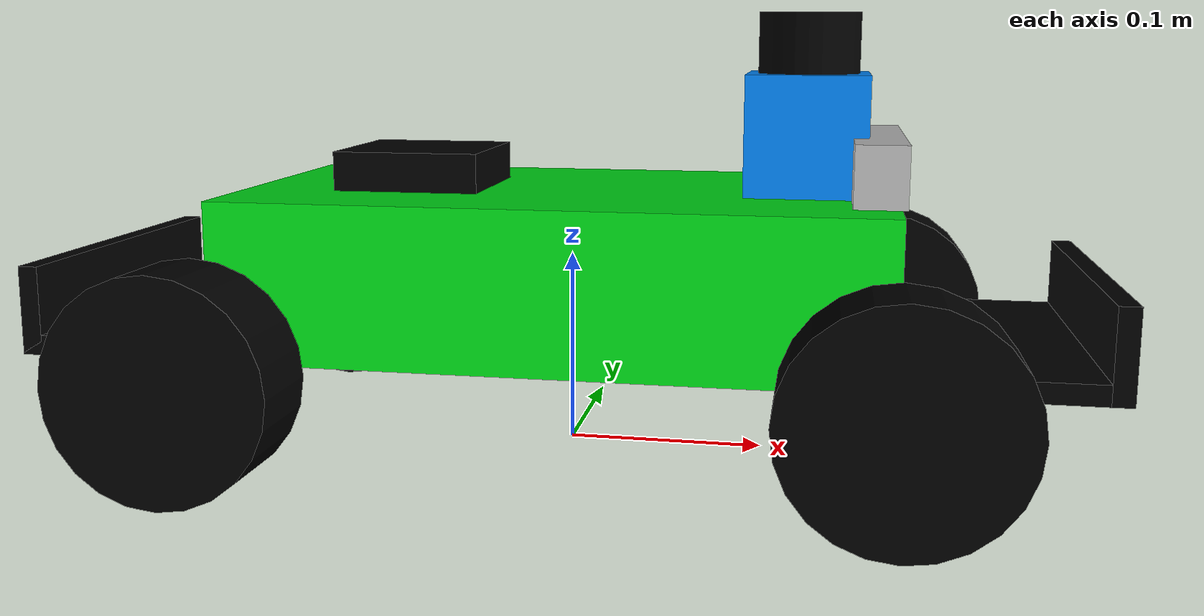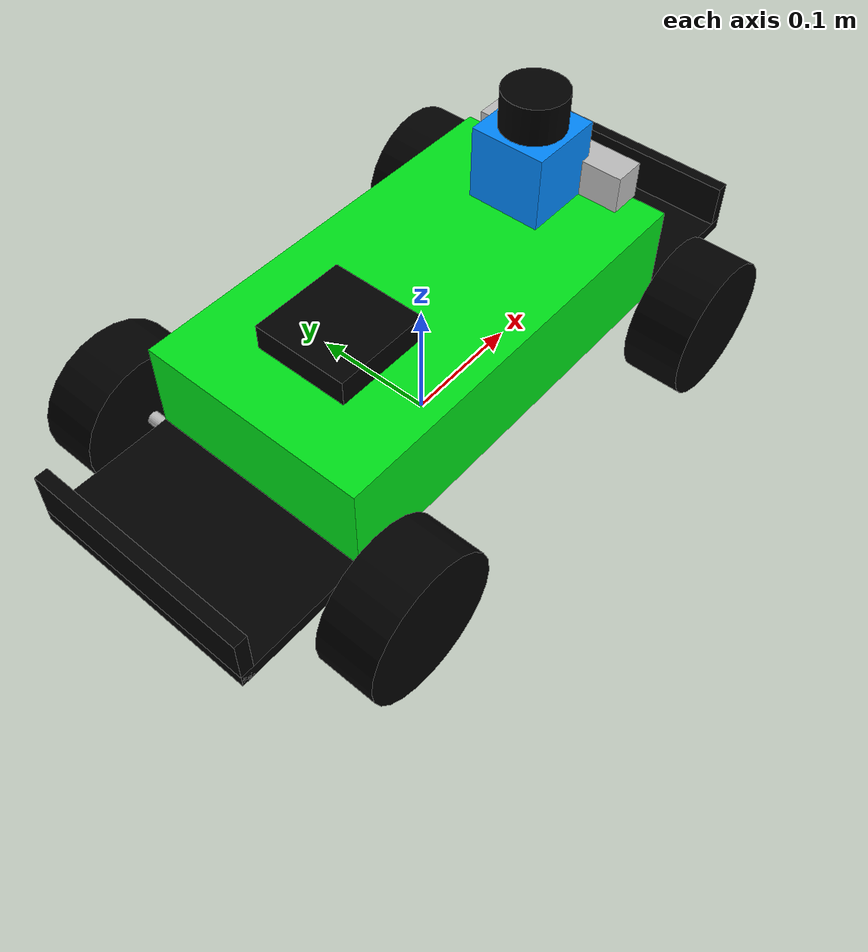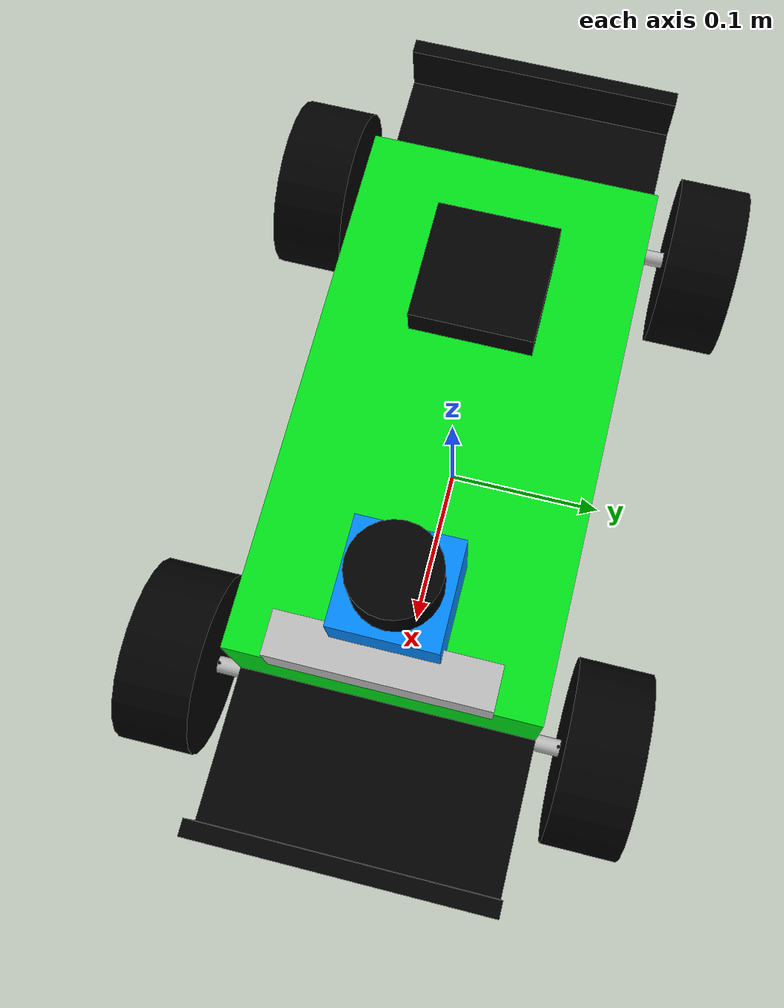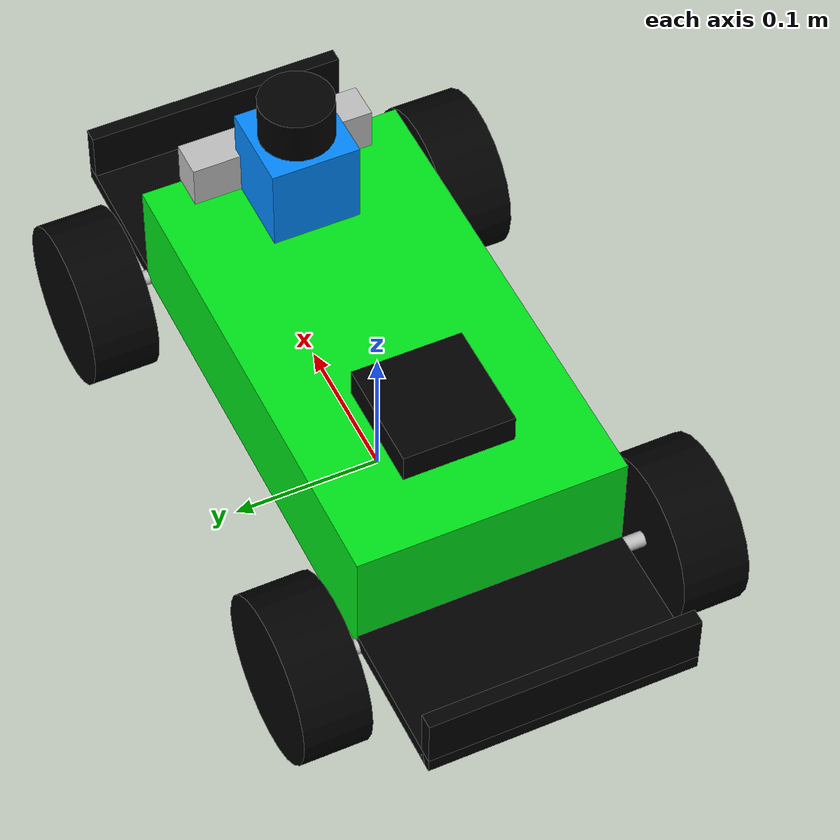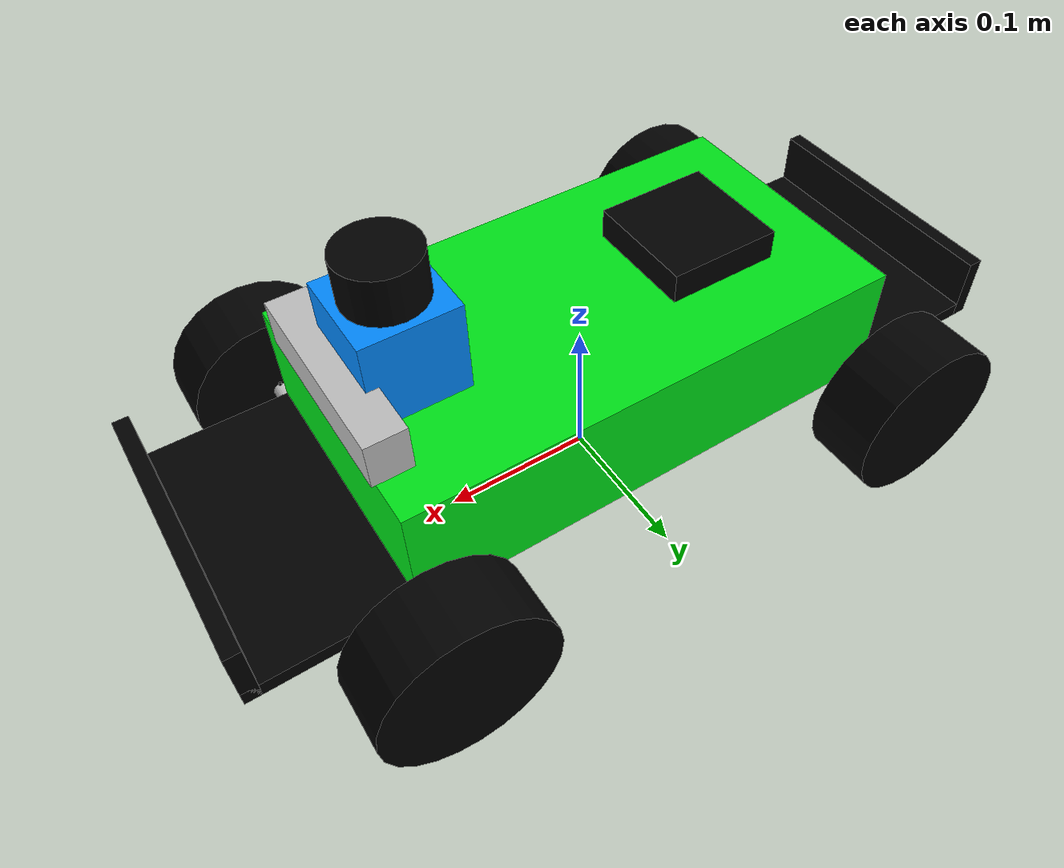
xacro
<?xml version="1.0"?>
<robot xmlns:xacro="http://www.ros.org/wiki/xacro" name="robot">

    <!-- ros2_control not implemented yet -->
    <xacro:arg name="use_ros2_control" default="false" />
    <xacro:arg name="sim_mode" default="false" />

    <!-- Robot model without sensors -->
    <xacro:include filename="robot_core.xacro" />

    <!-- Sensors -->
    <xacro:include filename="lidar.xacro" />
    <xacro:include filename="imu.xacro" />
    <xacro:include filename="camera.xacro" />
    <xacro:include filename="depth_camera.xacro" />

    <!-- Controller -->

    <xacro:if value="$(arg use_ros2_control)">
        <xacro:include filename="ros2_control.xacro" />
    </xacro:if>
    <xacro:if value="$(arg sim_mode)">
        <xacro:unless value="$(arg use_ros2_control)">
            <xacro:include filename="gazebo_ackermann_control.xacro" />
        </xacro:unless>
    </xacro:if>
</robot>

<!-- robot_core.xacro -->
<robot xmlns:xacro="http://www.ros.org/wiki/xacro" >
  <xacro:arg name="wheel_diameter" default="0.11"/>

  <xacro:include filename="inertial_macros.xacro"/>

  <!-- Define robot constants -->
  <xacro:property name="wheel_mass" value="0.2"/>
  <xacro:property name="chassis_mass" value = "1.5"/>
  <xacro:property name="axle_mass" value="0.2"/>
  <xacro:property name="bumper_mass" value = "0.2"/>
  <xacro:property name="wheel_radius" value="${$(arg wheel_diameter)/2}"/>
  <xacro:property name="wheel_width" value="0.045"/>
  <xacro:property name="steering_kingpin_mass" value = "0.001"/>
  <xacro:property name="steering_kingpin_length" value = "0.014"/>
  <xacro:property name="steering_kingpin_radius" value = "0.001"/>
  <xacro:property name="wheelbase_length" value="0.33"/>
  <xacro:property name="chassis_breadth" value = "0.18"/>
  <xacro:property name="chassis_length" value = "${wheelbase_length}"/>
  <xacro:property name="bumper_horiz_length" value = "0.1"/>
  <xacro:property name="bumper_vert_length" value = "0.045"/>
  <xacro:property name="bumper_thickness" value = "0.01"/>
  <xacro:property name="overall_body_length" value = "${wheelbase_length+2*bumper_horiz_length}"/>
  <xacro:property name="chassis_height" value = "0.08"/>
  <xacro:property name="front_wheelbase_breadth" value="0.21"/>
  <xacro:property name="rear_wheelbase_breadth" value="0.21"/>
  <xacro:property name="axle_radius" value="0.005"/>

  <material name="black">
    <color rgba="0 0 0 1"/>
  </material>
  <material name="lime">
    <color rgba="0 0.9 0.1 1"/>
  </material>
  <material name="silver">
    <color rgba="0.75 0.75 0.75 1"/>
  </material>
  <material name="neon_blue">
    <color rgba="0.01 0.54 1 1"/>
  </material>

  <!-- Robot Base -->
  <link name="base_link"/>

  <link name="chassis_link">
    <visual>
      <origin xyz="0 0 0" rpy="0 0 0"/>
      <geometry>
        <box size="${chassis_length} ${chassis_breadth} ${chassis_height}"/>
      </geometry>
      <material name="lime"/>
    </visual>
    <collision>
      <geometry>
        <box size="${chassis_length} ${chassis_breadth} ${chassis_height}"/>
      </geometry>
    </collision>
    <xacro:inertial_box mass="${chassis_mass}" length="${chassis_length}" breadth="${chassis_breadth}" height="${chassis_height}">
      <origin xyz="0 0 0" rpy="0 0 0"/>
    </xacro:inertial_box>
  </link>

  <joint name="chassis_joint" type="fixed">
    <parent link="base_link"/>
    <child link="chassis_link"/>
    <origin rpy="0 0 0" xyz="0 0 ${wheel_radius+chassis_height/2}"/>
  </joint>

  <link name="bumper_link">
    <visual>
      <origin xyz="${chassis_length/2 + bumper_horiz_length/2} 0 ${-chassis_height/2+bumper_thickness/2}" rpy="0 0 0"/>
      <geometry>
        <box size="${bumper_horiz_length} ${chassis_breadth} ${bumper_thickness}"/>
      </geometry>
      <material name="black"/>
    </visual>
    <visual>
      <origin xyz="${-chassis_length/2 - bumper_horiz_length/2} 0 ${-chassis_height/2+bumper_thickness/2}" rpy="0 0 0"/>
      <geometry>
        <box size="${bumper_horiz_length} ${chassis_breadth} ${bumper_thickness}"/>
      </geometry>
      <material name="black"/>
    </visual>
    <visual>
      <origin xyz="${chassis_length/2 + bumper_horiz_length - bumper_thickness/2} 0 ${-chassis_height/2+bumper_vert_length/2}" rpy="0 0 0"/>
      <geometry>
        <box size="${bumper_thickness} ${chassis_breadth} ${bumper_vert_length}"/>
      </geometry>
      <material name="black"/>
    </visual>
    <visual>
      <origin xyz="${-chassis_length/2 - bumper_horiz_length + bumper_thickness/2} 0 ${-chassis_height/2+bumper_vert_length/2}" rpy="0 0 0"/>
      <geometry>
        <box size="${bumper_thickness} ${chassis_breadth} ${bumper_vert_length}"/>
      </geometry>
      <material name="black"/>
    </visual>
    <collision>
      <geometry>
        <box size="${overall_body_length} ${chassis_breadth} ${bumper_vert_length}"/>
      </geometry>
    </collision>
    <xacro:inertial_box mass="${bumper_mass}" length="${overall_body_length}" breadth="${chassis_breadth}" height="${bumper_vert_length}">
      <origin xyz="0 0 0" rpy="0 0 0"/>
    </xacro:inertial_box>
  </link>

  <joint name="bumper_joint" type="fixed">
    <parent link="chassis_link"/>
    <child link="bumper_link"/>
    <origin rpy="0 0 0" xyz="0 0 0"/>
  </joint>

  <!-- Rear axle -->
  <link name="rear_axle_link">
    <visual>
      <geometry>
        <cylinder length="${rear_wheelbase_breadth}" radius="${axle_radius}"/>
      </geometry>
      <material name="silver"/>
    </visual>
    <collision>
      <geometry>
        <cylinder length="${rear_wheelbase_breadth}" radius="${axle_radius}"/>
      </geometry>
    </collision>
    <xacro:inertial_cylinder mass="${axle_mass}" radius="${axle_radius}" length="${rear_wheelbase_breadth}">
      <origin xyz="0 0 0" rpy="0 0 0"/>
    </xacro:inertial_cylinder>
  </link>

  <joint name="rear_axle_joint" type="fixed">
    <parent link="chassis_link"/>
    <child link="rear_axle_link"/>
    <origin xyz="${-wheelbase_length/2} 0 ${-chassis_height/2}" rpy="${-pi/2} 0 0"/>
  </joint>

  <!-- Left rear wheel -->
  <link name="left_rear_wheel_link">
    <visual>
      <geometry>
        <cylinder length="${wheel_width}" radius="${wheel_radius}"/>
      </geometry>
      <material name="black">
        <color rgba="0 0 0 1"/>
      </material>
    </visual>
    <collision>
      <geometry>
        <cylinder length="${wheel_width}" radius="${wheel_radius}"/>
      </geometry>
    </collision>
    <xacro:inertial_cylinder mass="${wheel_mass}" radius="${wheel_radius}" length="${wheel_width}">
      <origin xyz="0 0 0" rpy="0 0 0"/>
    </xacro:inertial_cylinder>
  </link>

  <joint name="left_rear_wheel_joint" type="continuous">
    <axis xyz="0 0 1"/>
    <parent link="rear_axle_link"/>
    <child link="left_rear_wheel_link"/>
    <origin xyz="0 0 ${rear_wheelbase_breadth/2+wheel_width/2}" rpy="0 0 0" />
    <limit effort="10000" velocity="500" />
  </joint>

  <gazebo reference="left_rear_wheel_link">
    <material>Gazebo/DarkGrey</material>
  </gazebo>

  <!-- Right rear wheel -->
  <link name="right_rear_wheel_link">
    <visual>
      <geometry>
        <cylinder length="${wheel_width}" radius="${wheel_radius}"/>
      </geometry>
      <material name="black">
        <color rgba="0 0 0 1"/>
      </material>
    </visual>
    <collision>
      <geometry>
        <cylinder length="${wheel_width}" radius="${wheel_radius}"/>
      </geometry>
    </collision>
    <xacro:inertial_cylinder mass="${wheel_mass}" radius="${wheel_radius}" length="${wheel_width}">
      <origin xyz="0 0 0" rpy="0 0 0"/>
    </xacro:inertial_cylinder>
  </link>

  <joint name="right_rear_wheel_joint" type="continuous">
    <axis xyz="0 0 1"/>
    <parent link="rear_axle_link"/>
    <child link="right_rear_wheel_link"/>
    <origin xyz="0 0 ${-rear_wheelbase_breadth/2-wheel_width/2}" rpy="0 0 0"/>
    <limit effort="10000" velocity="500" />
  </joint>

  <gazebo reference="right_front_wheel_link">
    <material>Gazebo/DarkGrey</material>
  </gazebo>

  <!-- Front axle -->
  <link name="front_axle_link">
    <visual>
      <geometry>
        <cylinder length="${front_wheelbase_breadth}" radius="${axle_radius}"/>
      </geometry>
      <material name="silver"/>
    </visual>
    <collision>
      <geometry>
        <cylinder length="${front_wheelbase_breadth}" radius="${axle_radius}"/>
      </geometry>
    </collision>
    <xacro:inertial_cylinder mass="${axle_mass}" radius="${axle_radius}" length="${front_wheelbase_breadth}">
      <origin xyz="0 0 0" rpy="0 0 0"/>
    </xacro:inertial_cylinder>
  </link>

  <joint name="front_axle_joint" type="fixed">
    <parent link="chassis_link"/>
    <child link="front_axle_link"/>
    <origin xyz="${wheelbase_length/2} 0 ${-chassis_height/2}" rpy="${-pi/2} 0 0"/>
  </joint>

  <!-- Left front wheel steering -->
  <link name="left_front_wheel_steering_link">
    <visual>
      <geometry>
        <cylinder length="${steering_kingpin_length}" radius="${steering_kingpin_radius}"/>
      </geometry>
      <material name="black"/>
    </visual>
    <collision>
      <geometry>
        <cylinder length="${steering_kingpin_length}" radius="${steering_kingpin_radius}"/>
      </geometry>
    </collision>
    <xacro:inertial_cylinder mass="${steering_kingpin_mass}" radius="${steering_kingpin_radius}" length="${steering_kingpin_length}">
      <origin xyz="0 0 0" rpy="0 0 0"/>
    </xacro:inertial_cylinder>
  </link>

  <joint name="left_front_wheel_steering_joint" type="revolute">
    <axis xyz="0 0 1"/>
    <limit lower="${-pi/3}" upper="${pi/3}" effort="1000000" velocity="500"/>
    <parent link="front_axle_link"/>
    <child link="left_front_wheel_steering_link"/>
    <origin xyz="0 0 ${front_wheelbase_breadth/2-steering_kingpin_radius}" rpy="${pi/2} 0 0" />
  </joint>

  <!-- Left front wheel -->
  <link name="left_front_wheel_link">
    <visual>
      <geometry>
        <cylinder length="${wheel_width}" radius="${wheel_radius}"/>
      </geometry>
      <material name="black"/>
    </visual>
    <collision>
      <geometry>
        <cylinder length="${wheel_width}" radius="${wheel_radius}"/>
      </geometry>
    </collision>
    <xacro:inertial_cylinder mass="${wheel_mass}" radius="${wheel_radius}" length="${wheel_width}">
      <origin xyz="0 0 0" rpy="0 0 0"/>
    </xacro:inertial_cylinder>
  </link>

  <joint name="left_front_wheel_joint" type="continuous">
    <axis xyz="0 0 1"/>
    <parent link="left_front_wheel_steering_link"/>
    <child link="left_front_wheel_link"/>
    <origin xyz="0 ${steering_kingpin_radius+wheel_width/2} 0" rpy="${-pi/2} 0 0"/>
    <limit effort="10000" velocity="500" />
  </joint>

  <gazebo reference="left_front_wheel_link">
    <material>Gazebo/DarkGrey</material>
  </gazebo>

  <!-- Right front wheel steering -->
  <link name="right_front_wheel_steering_link">
    <visual>
      <geometry>
        <cylinder length="${steering_kingpin_length}" radius="${steering_kingpin_radius}"/>
      </geometry>
      <material name="black"/>
    </visual>
    <collision>
      <geometry>
        <cylinder length="${steering_kingpin_length}" radius="${steering_kingpin_radius}"/>
      </geometry>
    </collision>
    <xacro:inertial_cylinder mass="${steering_kingpin_mass}" radius="${steering_kingpin_radius}" length="${steering_kingpin_length}">
      <origin xyz="0 0 0" rpy="0 0 0"/>
    </xacro:inertial_cylinder>
  </link>

  <joint name="right_front_wheel_steering_joint" type="revolute">
    <axis xyz="0 0 1"/>
    <limit lower="${-pi/3}" upper="${pi/3}" effort="1000000" velocity="500"/>
    <parent link="front_axle_link"/>
    <child link="right_front_wheel_steering_link"/>
    <origin xyz="0 0 ${-front_wheelbase_breadth/2+steering_kingpin_radius}" rpy="${pi/2} 0 0" />
  </joint>

  <!-- Right front wheel -->
  <link name="right_front_wheel_link">
    <visual>
      <geometry>
        <cylinder length="${wheel_width}" radius="${wheel_radius}"/>
      </geometry>
      <material name="black"/>
    </visual>
    <collision>
      <geometry>
        <cylinder length="${wheel_width}" radius="${wheel_radius}"/>
      </geometry>
    </collision>
    <xacro:inertial_cylinder mass="${wheel_mass}" radius="${wheel_radius}" length="${wheel_width}">
      <origin xyz="0 0 0" rpy="0 0 0"/>
    </xacro:inertial_cylinder>
  </link>

  <joint name="right_front_wheel_joint" type="continuous">
    <axis xyz="0 0 1"/>
    <parent link="right_front_wheel_steering_link"/>
    <child link="right_front_wheel_link"/>
    <origin xyz="0 ${-steering_kingpin_radius-wheel_width/2} 0" rpy="${-pi/2} 0 0"/>
    <limit effort="10000" velocity="500" />
  </joint>

  <gazebo reference="right_front_wheel_link">
    <material>Gazebo/DarkGrey</material>
  </gazebo>
</robot>

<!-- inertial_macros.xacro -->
<robot xmlns:xacro="http://www.ros.org/wiki/xacro" >

    <!-- Specify some standard inertial calculations https://en.wikipedia.org/wiki/List_of_moments_of_inertia -->
    <!-- These make use of xacro's mathematical functionality -->

    <xacro:macro name="inertial_sphere" params="mass radius *origin">
        <inertial>
            <xacro:insert_block name="origin"/>
            <mass value="${mass}" />
            <inertia ixx="${(2/5) * mass * (radius*radius)}" ixy="0.0" ixz="0.0"
                    iyy="${(2/5) * mass * (radius*radius)}" iyz="0.0"
                    izz="${(2/5) * mass * (radius*radius)}" />
        </inertial>
    </xacro:macro>

    <xacro:macro name="inertial_box" params="mass length breadth height *origin">
        <inertial>
            <xacro:insert_block name="origin"/>
            <mass value="${mass}" />
            <inertia ixx="${(1/12) * mass * (breadth*breadth+height*height)}" ixy="0.0" ixz="0.0"
                    iyy="${(1/12) * mass * (length*length+height*height)}" iyz="0.0"
                    izz="${(1/12) * mass * (length*length+breadth*breadth)}" />
        </inertial>
    </xacro:macro>

    <xacro:macro name="inertial_cylinder" params="mass length radius *origin">
        <inertial>
            <xacro:insert_block name="origin"/>
            <mass value="${mass}" />
            <inertia ixx="${(1/12) * mass * (3*radius*radius + length*length)}" ixy="0.0" ixz="0.0"
                    iyy="${(1/12) * mass * (3*radius*radius + length*length)}" iyz="0.0"
                    izz="${(1/2) * mass * (radius*radius)}" />
        </inertial>
    </xacro:macro>

</robot>

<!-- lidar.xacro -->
<robot xmlns:xacro="http://www.ros.org/wiki/xacro">

  <!-- Define lidar constants -->
  <xacro:property name="lidar_mass" value="0.01" />
  <xacro:property name="lidar_support_mass" value="0.01" />
  <xacro:property name="lidar_radius" value="0.025" />
  <xacro:property name="lidar_length" value="0.03" />
  <xacro:property name="lidar_support_breadth" value="0.06" />
  <xacro:property name="lidar_support_length" value="0.06" />
  <xacro:property name="lidar_support_height" value="0.06" />

  <link name="lidar_link">
    <visual>
      <geometry>
        <cylinder radius="${lidar_radius}" length="${lidar_length}" />
      </geometry>
      <material name="black" />
    </visual>
    <collision>
      <geometry>
        <cylinder radius="${lidar_radius}" length="${lidar_length}" />
      </geometry>
    </collision>
    <xacro:inertial_cylinder mass="${lidar_mass}" length="${lidar_length}" radius="${lidar_radius}">
      <origin xyz="0 0 0" rpy="0 0 0" />
    </xacro:inertial_cylinder>
  </link>

  <link name="lidar_support_link">
    <visual>
      <geometry>
        <box size="${lidar_support_length} ${lidar_support_breadth} ${lidar_support_height}" />
      </geometry>
      <material name="neon_blue" />
    </visual>
    <collision>
      <geometry>
        <box size="${lidar_support_length} ${lidar_support_breadth} ${lidar_support_height}" />
      </geometry>
    </collision>
    <xacro:inertial_box mass="${lidar_mass}" length="${lidar_support_length}" breadth="${lidar_support_breadth}" height="${lidar_support_height}">
      <origin xyz="0 0 0" rpy="0 0 0" />
    </xacro:inertial_box>
  </link>

  <joint name="lidar_joint" type="fixed">
    <parent link="lidar_support_link" />
    <child link="lidar_link" />
    <origin xyz="0 0 ${lidar_length/2 + lidar_support_height/2}" rpy="0 0 ${pi}" />
  </joint>

  <joint name="lidar_support_joint" type="fixed">
    <parent link="chassis_link" />
    <child link="lidar_support_link" />
    <origin xyz="0.12 0 ${chassis_height/2 + lidar_support_height/2}" rpy="0 0 0" />
  </joint>

  <gazebo reference="lidar_link">
    <material>Gazebo/Black</material>
    <sensor name='lidar_link' type='gpu_lidar'>
      <topic>${frame_prefix}scan_lidar</topic>
      <gz_frame_id>${frame_prefix}lidar_link</gz_frame_id>
      <pose relative_to="${frame_prefix}lidar_link">0 0 0 0 0 0</pose>
      <always_on>1</always_on>
      <visualize>0</visualize>
      <update_rate>10</update_rate>
      <ray>
        <scan>
          <horizontal>
            <samples>640</samples>
            <resolution>1</resolution>
            <min_angle>-3.1416</min_angle>
            <max_angle>3.1416</max_angle>
          </horizontal>
          <vertical>
            <samples>1</samples>
            <resolution>0.1</resolution>
            <min_angle>0</min_angle>
            <max_angle>0</max_angle>
          </vertical>
        </scan>
        <range>
          <min>0.20</min>
          <max>10.0</max>
          <resolution>0.1</resolution>
        </range>
      </ray>
    </sensor>
  </gazebo>
</robot>

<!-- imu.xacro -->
<robot xmlns:xacro="http://www.ros.org/wiki/xacro">

  <link name="imu_link">
    <visual>
      <geometry>
        <box size="0.075 0.075 0.02" />
      </geometry>
      <material name="black" />
    </visual>
    <collision>
      <geometry>
        <box size="0.075 0.075 0.2" />
      </geometry>
    </collision>
    <xacro:inertial_box mass="0.1" length="0.075" breadth="0.075" height="0.02">
      <origin xyz="0 0 0" rpy="0 0 0" />
    </xacro:inertial_box>
  </link>

  <joint name="imu_joint" type="fixed">
    <parent link="chassis_link" />
    <child link="imu_link" />
    <origin xyz="-0.08 0 ${chassis_height/2 + 0.01}" />
  </joint>

  <gazebo reference="imu_link">
    <material>Gazebo/Black</material>
    <sensor name="imu_sensor" type="imu">
      <always_on>1</always_on>
      <update_rate>30</update_rate>
      <visualize>0</visualize>
      <topic>${frame_prefix}imu</topic>
      <gz_frame_id>${frame_prefix}imu_link</gz_frame_id>
      <pose relative_to='${frame_prefix}imu_link'>0 0 0 0 0 0</pose>
    </sensor>
  </gazebo>
</robot>

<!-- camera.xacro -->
<robot xmlns:xacro="http://www.ros.org/wiki/xacro">

  <link name="camera_link">
    <visual>
      <geometry>
        <box size="0.025 0.125 0.03" />
      </geometry>
      <material name="silver" />
    </visual>
    <xacro:inertial_box mass="0.1" length="0.025" breadth="0.125" height="0.03">
      <origin xyz="0 0 0" rpy="0 0 0" />
    </xacro:inertial_box>
  </link>
  <joint name="camera_joint" type="fixed">
    <parent link="chassis_link" />
    <child link="camera_link" />
    <origin xyz="0.155 0 ${chassis_height/2 + 0.015}" rpy="0 0 0" />
  </joint>

  <gazebo reference="camera_link">
    <material>Gazebo/Silver</material>
    <sensor name="camera" type="camera">
      <always_on>1</always_on>
      <visualize>0</visualize>
      <update_rate>30</update_rate>
      <topic>${frame_prefix}sensors/camera/image</topic>
      <gz_frame_id>${frame_prefix}camera_link</gz_frame_id>
      <pose relative_to='${frame_prefix}camera_link'>0 0 0 0 0 0</pose>
      <camera>
        <horizontal_fov>1.089</horizontal_fov>
        <image>
          <format>R8G8B8</format>
          <width>640</width>
          <height>480</height>
        </image>
        <clip>
          <near>0.05</near>
          <far>30.0</far>
        </clip>
      </camera>
    </sensor>
  </gazebo>

</robot>

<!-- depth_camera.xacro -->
<robot xmlns:xacro="http://www.ros.org/wiki/xacro">

  <link name="depth_camera_link">
    <visual>
      <geometry>
        <box size="0.025 0.125 0.03" />
      </geometry>
      <material name="silver" />
    </visual>
    <xacro:inertial_box mass="0.1" length="0.025" breadth="0.125" height="0.03">
      <origin xyz="0 0 0" rpy="0 0 0" />
    </xacro:inertial_box>
  </link>
  <joint name="depth_camera_joint" type="fixed">
    <parent link="chassis_link" />
    <child link="depth_camera_link" />
    <origin xyz="0.155 0 ${chassis_height/2 + 0.015}" rpy="0 0 0" />
  </joint>

  <gazebo reference="depth_camera_link">
    <material>Gazebo/Silver</material>
    <sensor name="depth_camera" type="depth_camera">
      <always_on>1</always_on>
      <visualize>0</visualize>
      <update_rate>30</update_rate>
      <topic>sensors/camera</topic>
      <!-- A bug in depth_camera sensor does not allow setting frame_id for point clouds:
      https://github.com/gazebosim/gz-sensors/pull/350 -->
      <!-- It defaults to "robot/base_link/depth_camera" and can be handled either using a static
      transformer or topic_tools-->
      <pose relative_to='depth_camera_link'>0 0 0 0 0 0</pose>
      <camera>
        <horizontal_fov>1.089</horizontal_fov>
        <image>
          <format>R_FLOAT32</format>
          <width>640</width>
          <height>480</height>
        </image>
        <clip>
          <near>0.05</near>
          <far>10.0</far>
        </clip>
      </camera>
    </sensor>
  </gazebo>

</robot>
